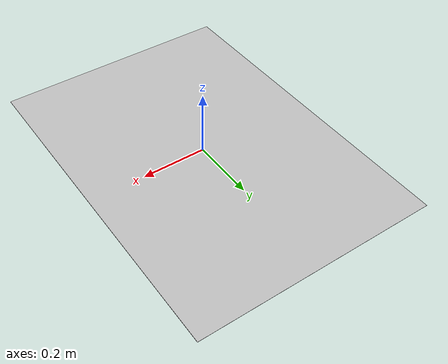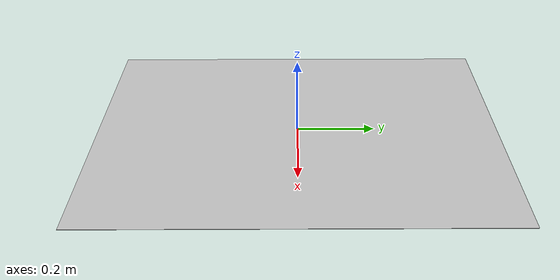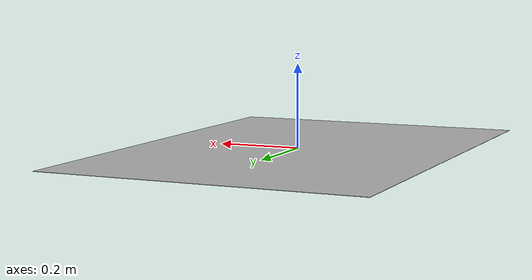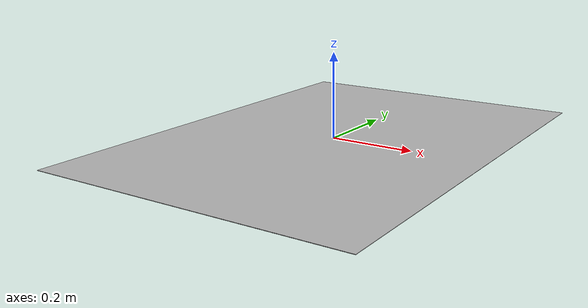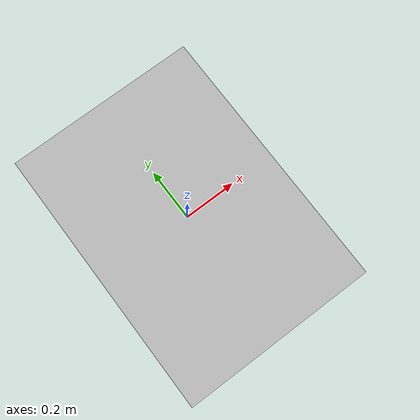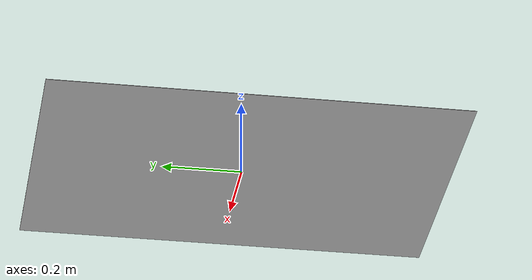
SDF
<?xml version='1.0'?>
<sdf version='1.6'>
  <model name='coca_cola_logo'>
    <link name='main'>
    <pose frame=''>0 0 0 0 0 0</pose>
      <visual name='main_Visual'>
        <geometry>
          <box>
            <size>0.75 1.05 0.001</size>
            <!-- inner logo dim: -->
          </box>
        </geometry>
           <material>
          <script>
            <uri>model://coca_cola_logo/materials/scripts</uri>
            <uri>model://coca_cola_logo/materials/textures</uri>
            <name>coca_cola_logo</name>
          </script>
        </material>
      </visual>
     </link>
    <static>1</static>
  </model>
</sdf>
